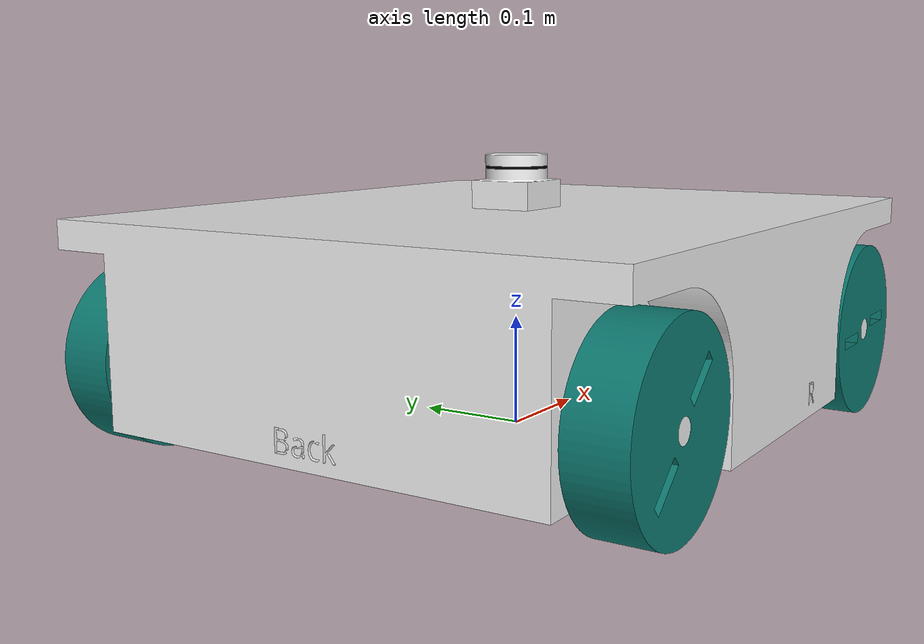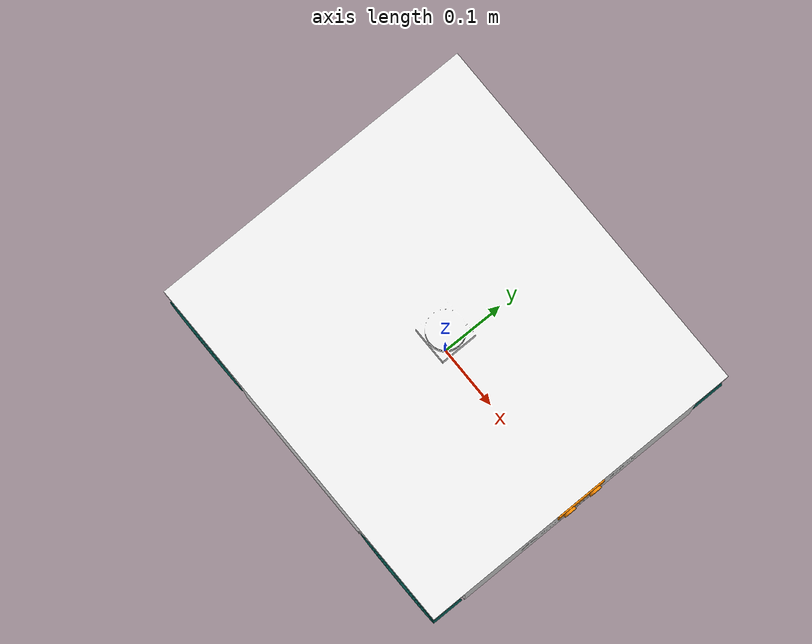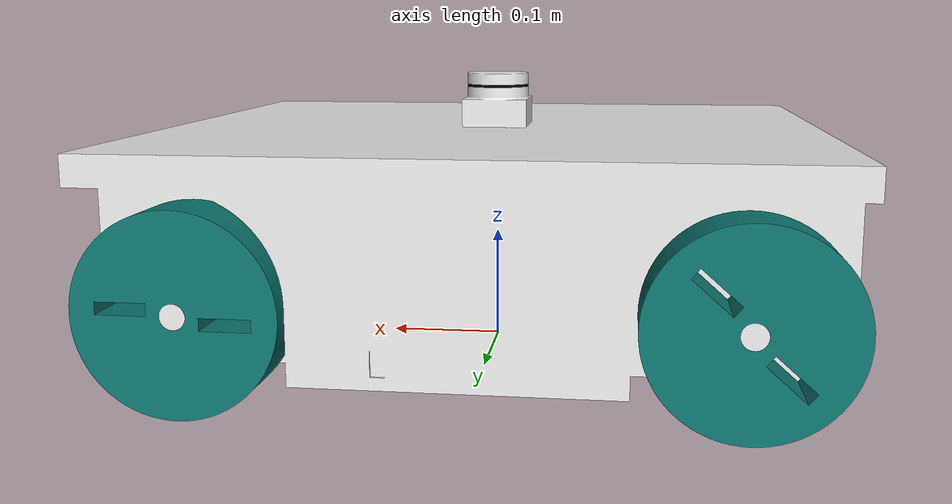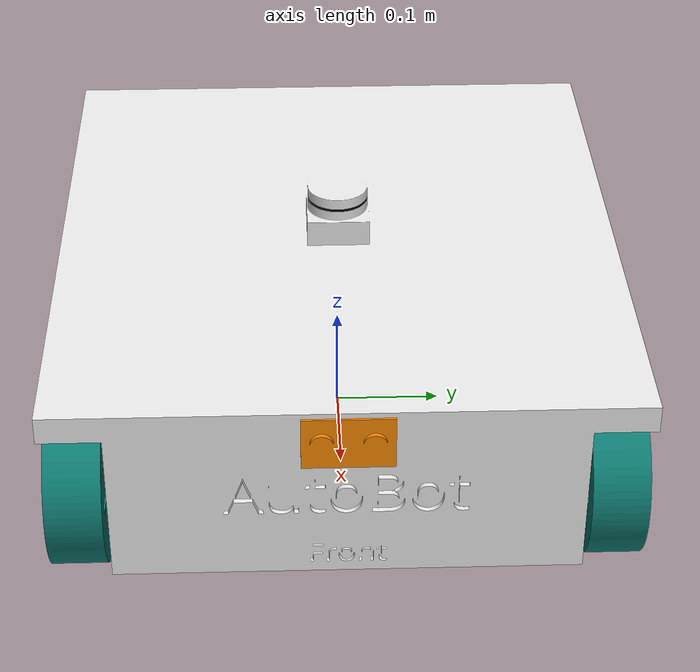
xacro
<?xml version="1.0"?>
<robot xmlns:xacro="http://www.ros.org/wiki/xacro" name="autobot">
  <!-- Link base_link -->
  <link name="base_footprint" />
  <link name="base_link">
    <inertial>
      <origin xyz="-0.000645097 1.49348e-05 0.123911" rpy="0 0 0" />
      <mass value="19.3771"/>
      <inertia ixx="0.656608" ixy="-1.63412e-05" ixz="2.74753e-05" iyy="0.740294" iyz="2.27431e-05" izz="1.21202"/>
    </inertial>
    <!-- Part base_link -->
    <visual>
      <origin xyz="-0 0 0" rpy="0 -0 0" />
      <geometry>
        <mesh filename="package://autobot_description/meshes/robot/base_link.stl" />
      </geometry>
      <material name="base_link_material">
        <color rgba="0.917647 0.917647 0.917647 1" />
      </material>
    </visual>
    <collision>
      <origin xyz="-0 0 0" rpy="0 -0 0" />
      <geometry>
        <mesh filename="package://autobot_description/meshes/robot/base_link.stl" />
      </geometry>
    </collision>
  </link>
  <!-- Joint from base_link to base_footprint -->
  <joint name="base_joint" type="fixed">
    <parent link="base_footprint" />
    <child link="base_link" />
  </joint>
  <!-- Link laser_frame -->
  <link name="laser_frame">
    <inertial>
      <origin xyz="-0 -0 -0.00125" rpy="0 0 0" />
      <mass value="0.00110509" />
      <inertia ixx="3.96821e-07" ixy="0" ixz="0" iyy="3.96821e-07" iyz="0" izz="7.92491e-07" />
    </inertial>
    <!-- Part laser_frame -->
    <visual>
      <origin xyz="-0 -0 0.2355" rpy="3.14159 -0 0" />
      <geometry>
        <mesh filename="package://autobot_description/meshes/robot/laser_frame.stl" />
      </geometry>
      <material name="laser_frame_material">
        <color rgba="0 0 0 1" />
      </material>
    </visual>
    <collision>
      <origin xyz="-0 -0 0.2355" rpy="3.14159 -0 0" />
      <geometry>
        <mesh filename="package://autobot_description/meshes/robot/laser_frame.stl" />
      </geometry>
    </collision>
  </link>
  <!-- Joint from base_link to laser_frame -->
  <joint name="laser_frame_joint" type="fixed">
    <origin xyz="-0 -0 0.2380" rpy="0 -0 0" />
    <parent link="base_link" />
    <child link="laser_frame" />
    <axis xyz="0 0 1" />
    <limit effort="10" velocity="10" />
  </joint>
  <!-- Link front_right_wheel_link -->
  <link name="front_right_wheel_link">
    <inertial>
      <origin xyz="0 0 -0.025" rpy="0 0 0" />
      <mass value="1.13952" />
      <inertia ixx="0.00216552" ixy="9.6e-06" ixz="-0" iyy="0.00208392" iyz="0" izz="0.00377465" />
    </inertial>
    <!-- Part front_right_wheel_link -->
    <visual>
      <origin xyz="-0.21 -0.08 -0.26" rpy="-1.5708 -0 0" />
      <geometry>
        <mesh filename="package://autobot_description/meshes/robot/front_right_wheel_link.stl" />
      </geometry>
      <material name="front_right_wheel_link_material">
        <color rgba="0.0470588 0.470588 0.435294 1" />
      </material>
    </visual>
    <collision>
      <origin xyz="-0.21 -0.08 -0.26" rpy="-1.5708 -0 0" />
      <geometry>
        <mesh filename="package://autobot_description/meshes/robot/front_right_wheel_link.stl" />
      </geometry>
    </collision>
  </link>
  <!-- Joint from base_link to front_right_wheel_link -->
  <joint name="front_right_wheel_joint" type="continuous">
    <origin xyz="0.21 -0.26 0.08" rpy="1.5708 -0 0" />
    <parent link="base_link" />
    <child link="front_right_wheel_link" />
    <axis xyz="0 0 -1" />
    <limit effort="10" velocity="10" />
  </joint>
  <!-- Link front_left_wheel_link -->
  <link name="front_left_wheel_link">
    <inertial>
      <origin xyz="0 0 -0.025" rpy="0 0 0" />
      <mass value="1.13952" />
      <inertia ixx="0.00216552" ixy="-9.6e-06" ixz="-0" iyy="0.00208392" iyz="-0" izz="0.00377465" />
    </inertial>
    <!-- Part front_left_wheel_link -->
    <visual>
      <origin xyz="-0.21 0.08 -0.26" rpy="1.5708 -0 0" />
      <geometry>
        <mesh filename="package://autobot_description/meshes/robot/front_left_wheel_link.stl" />
      </geometry>
      <material name="front_left_wheel_link_material">
        <color rgba="0.0470588 0.470588 0.435294 1" />
      </material>
    </visual>
    <collision>
      <origin xyz="-0.21 0.08 -0.26" rpy="1.5708 -0 0" />
      <geometry>
        <mesh filename="package://autobot_description/meshes/robot/front_left_wheel_link.stl" />
      </geometry>
    </collision>
  </link>
  <!-- Joint from base_link to front_left_wheel_link -->
  <joint name="front_left_wheel_joint" type="continuous">
    <origin xyz="0.21 0.26 0.08" rpy="-1.5708 -0 0" />
    <parent link="base_link" />
    <child link="front_left_wheel_link" />
    <axis xyz="0 0 1" />
    <limit effort="10" velocity="10" />
  </joint>
  <!-- Link back_right_wheel_link -->
  <link name="back_right_wheel_link">
    <inertial>
      <origin xyz="-0 0 -0.025" rpy="0 0 0" />
      <mass value="1.13952" />
      <inertia ixx="0.00211984" ixy="4.16292e-05" ixz="-0" iyy="0.0021296" iyz="0" izz="0.00377465" />
    </inertial>
    <!-- Part back_right_wheel_link -->
    <visual>
      <origin xyz="0.21 -0.08 -0.26" rpy="-1.5708 -0 0" />
      <geometry>
        <mesh filename="package://autobot_description/meshes/robot/back_right_wheel_link.stl" />
      </geometry>
      <material name="back_right_wheel_link_material">
        <color rgba="0.0470588 0.470588 0.435294 1" />
      </material>
    </visual>
    <collision>
      <origin xyz="0.21 -0.08 -0.26" rpy="-1.5708 -0 0" />
      <geometry>
        <mesh filename="package://autobot_description/meshes/robot/back_right_wheel_link.stl" />
      </geometry>
    </collision>
  </link>
  <!-- Joint from base_link to back_right_wheel_link -->
  <joint name="back_right_wheel_joint" type="continuous">
    <origin xyz="-0.21 -0.26 0.08" rpy="1.5708 -0 0" />
    <parent link="base_link" />
    <child link="back_right_wheel_link" />
    <axis xyz="0 0 -1" />
    <limit effort="10" velocity="10" />
  </joint>
  <!-- Link back_left_wheel_link -->
  <link name="back_left_wheel_link">
    <inertial>
      <origin xyz="0 0 -0.025" rpy="0 0 0" />
      <mass value="1.13952" />
      <inertia ixx="0.00211984" ixy="-4.16292e-05" ixz="-0" iyy="0.0021296" iyz="-0"
        izz="0.00377465" />
    </inertial>
    <!-- Part back_left_wheel_link -->
    <visual>
      <origin xyz="0.21 0.08 -0.26" rpy="1.5708 -0 0" />
      <geometry>
        <mesh filename="package://autobot_description/meshes/robot/back_left_wheel_link.stl" />
      </geometry>
      <material name="back_left_wheel_link_material">
        <color rgba="0.0470588 0.470588 0.435294 1" />
      </material>
    </visual>
    <collision>
      <origin xyz="0.21 0.08 -0.26" rpy="1.5708 -0 0" />
      <geometry>
        <mesh filename="package://autobot_description/meshes/robot/back_left_wheel_link.stl" />
      </geometry>
    </collision>
  </link>
  <!-- Joint from base_link to back_left_wheel_link -->
  <joint name="back_left_wheel_joint" type="continuous">
    <origin xyz="-0.21 0.26 0.08" rpy="-1.5708 -0 0" />
    <parent link="base_link" />
    <child link="back_left_wheel_link" />
    <axis xyz="0 0 1" />
    <limit effort="10" velocity="10" />
  </joint>
  <!-- Link rgbd_camera_link -->
  <link name="rgbd_camera_link">
    <inertial>
      <origin xyz="-0 -0.000140937 -0.00297824" rpy="0 0 0" />
      <mass value="0.0151912" />
      <inertia ixx="2.51438e-06" ixy="0" ixz="0" iyy="6.58666e-06" iyz="-6.47e-09" izz="9.005e-06" />
    </inertial>
    <!-- Part rgbd_camera_link -->
    <visual>
      <origin xyz="-0.288 0 -0.17" rpy="0 0 0" />
      <geometry>
        <mesh filename="package://autobot_description/meshes/robot/rgbd_camera_link.stl" />
      </geometry>
      <material name="rgbd_camera_link_material">
        <color rgba="0.972549 0.529412 0.00392157 1" />
      </material>
    </visual>
  </link>
  <!-- Joint from base_link to rgbd_camera_link -->
  <joint name="rgbd_camera_joint" type="fixed">
    <origin xyz="0.288 0 0.17" rpy="0 0 0" />
    <parent link="base_link" />
    <child link="rgbd_camera_link" />
    <axis xyz="0 0 -1" />
    <limit effort="10" velocity="10" />
  </joint>

  <!-- Optical frame for the camera to match standard computer vision orientation -->
  <link name="rgbd_camera_depth_optical_frame" />
  <joint name="rgbd_camera_depth_optical_joint" type="fixed">
    <origin xyz="0.05 0 0" rpy="-1.57079632679 0 -1.57079632679" />
    <parent link="rgbd_camera_link" />
    <child link="rgbd_camera_depth_optical_frame" />
  </joint>

  <!-- Laser gazebo setup -->
  <gazebo reference="laser_frame">

    <sensor name="lidar_sensor" type="gpu_lidar">
      <topic>scan</topic>
      <frame_id>laser_frame</frame_id>
      <update_rate>10</update_rate>
      <always_on>true</always_on>
      <visualize>true</visualize>
      <ray>
        <scan>
          <horizontal>
            <samples>720</samples>
            <resolution>1</resolution>
            <min_angle>-3.14159</min_angle>
            <max_angle>3.14159</max_angle>
          </horizontal>
          <vertical>
            <samples>1</samples>
            <resolution>1</resolution>
            <min_angle>0</min_angle>
            <max_angle>0</max_angle>
          </vertical>
        </scan>
        <range>
          <min>0.05</min>
          <max>20</max>
          <resolution>0.01</resolution>
        </range>
        <noise>
          <type>gaussian</type>
          <mean>0.0</mean>
          <stddev>0.001</stddev>
        </noise>
      </ray>
      <gz_frame_id>laser_frame</gz_frame_id>
    </sensor>
  </gazebo>

  <!-- rgbd camera plugin -->
  <gazebo reference="rgbd_camera_link">
    <sensor name="rgbd_camera" type="rgbd_camera">
      <pose>0.05 0 0 0 0 0</pose>
      <camera>
        <horizontal_fov>1.5184</horizontal_fov>
        <image>
          <width>424</width>
          <height>240</height>
        </image>
        <clip>
          <near>0.05</near>
          <far>5</far>
        </clip>
      </camera>
      <always_on>1</always_on>
      <gz_frame_id>rgbd_camera_depth_optical_frame</gz_frame_id>
      <topic>rgbd_camera</topic>
      <update_rate>2</update_rate>
      <visualize>true</visualize>
    </sensor>
  </gazebo>

  <!-- IMU Sensor setup -->
  <xacro:include
    filename="$(find autobot_description)/urdf/sensors/imu.urdf.xacro" />
  <xacro:imu_sensor
    parent="base_link"
    frame_id="imu"
    xyz_offset="0 0 0"
    rpy_offset="0 0 0"
    topic_name="imu/data" />

  <xacro:include
    filename="$(find autobot_description)/urdf/control/velocity_control_plugin.urdf.xacro" />
  <xacro:load_velocity_control_plugin use_gazebo="$(arg use_gazebo)" />

  <xacro:include
    filename="$(find autobot_description)/urdf/control/gazebo_sim_ros2_control.urdf.xacro" />
  <xacro:load_gazebo_sim_ros2_control_plugin
    robot_name="$(arg robot_name)"
    use_gazebo="$(arg use_gazebo)" />

  <xacro:include
    filename="$(find autobot_description)/urdf/control/autobot_ros2_control.urdf.xacro" />
  <xacro:autobot_ros2_control
    use_gazebo="$(arg use_gazebo)" />

</robot>

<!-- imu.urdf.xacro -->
<robot xmlns:xacro="http://www.ros.org/wiki/xacro">
    <xacro:property name="M_PI" value="3.1415926535897931" />

    <xacro:macro name="imu_sensor" params="
        prefix:=''
        parent:='base_link'
        frame_id:='imu'
        xyz_offset:='0 0 0'
        rpy_offset:='0 0 0'
        inertial_xyz_offset:='0 0 0'
        inertial_rpy_offset:='0 0 0'
        mass:=0.031
        length:=0.03899
        width:=0.03785
        height:=0.01338
        material_name:='imu_black'
        material_color:='0.1 0.1 0.1 1'
        gazebo_material_ambient:='0.1 0.1 0.1 1'
        gazebo_material_diffuse:='0.1 0.1 0.1 1'
        gazebo_material_specular:='0.1 0.1 0.1 1'
        update_rate:='15.0'
        topic_name:='imu/data'
        always_on:=true
        visualize:=false">

        <xacro:property name="ixx" value="${(mass/12.0) * (height*height + width*width)}" />
        <xacro:property name="iyy" value="${(mass/12.0) * (length*length + height*height)}" />
        <xacro:property name="izz" value="${(mass/12.0) * (length*length + width*width)}" />

        <link name="${prefix}${frame_id}_link">
            <visual>
                <origin xyz="0 0 0.21" rpy="0 0 0"/>
                <geometry>
                    <box size="${length} ${width} ${height}"/>
                </geometry>
                <material name="${material_name}">
                    <color rgba="${material_color}"/>
                </material>
            </visual>

            <inertial>
                <mass value="${mass}" />
                <origin xyz="${inertial_xyz_offset}" rpy="${inertial_rpy_offset}"/>
                <inertia
                    ixx="${ixx}"
                    ixy="0.0"
                    ixz="0.0"
                    iyy="${iyy}"
                    iyz="0.0"
                    izz="${izz}" />
            </inertial>
        </link>

        <joint name="${prefix}${frame_id}_joint" type="fixed">
            <parent link="${prefix}${parent}"/>
            <child link="${prefix}${frame_id}_link" />
            <origin xyz="${xyz_offset}" rpy="${rpy_offset}"/>
        </joint>

        <gazebo reference="${prefix}${frame_id}_link">
            <material>
                <ambient>${gazebo_material_ambient}</ambient>
                <diffuse>${gazebo_material_diffuse}</diffuse>
                <specular>${gazebo_material_specular}</specular>
            </material>
            <sensor name="${prefix}imu_sensor" type="imu">
                <topic>${topic_name}</topic>
                <update_rate>${update_rate}</update_rate>
                <always_on>${always_on}</always_on>
                <visualize>${visualize}</visualize>
                <gz_frame_id>${prefix}${frame_id}_link</gz_frame_id>
            </sensor>
        </gazebo>
    </xacro:macro>
</robot>
